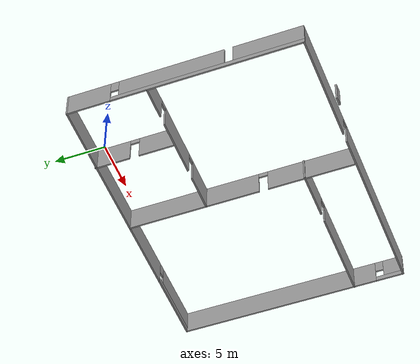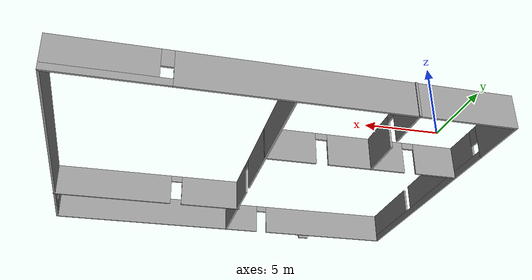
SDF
<?xml version='1.0'?>
<sdf version='1.6'>
  <model name='my_building'>
    <pose frame=''>10.1612 -9.66671 0 0 -0 0</pose>
    <link name='Door_0'>
      <collision name='Door_0_Collision'>
        <geometry>
          <box>
            <size>0.9 0.17 2</size>
          </box>
        </geometry>
        <pose frame=''>0 0 1 0 -0 0</pose>
      </collision>
      <visual name='Door_0_Visual'>
        <pose frame=''>0 0 1 0 -0 0</pose>
        <geometry>
          <box>
            <size>0.9 0.17 2</size>
          </box>
        </geometry>
        <material>
          <script>
            <uri>file://media/materials/scripts/gazebo.material</uri>
            <name>Gazebo/Grey</name>
          </script>
        </material>
      </visual>
      <pose frame=''>-7.65143 -12.2036 0 0 -0 0</pose>
    </link>
    <link name='Wall_0'>
      <pose frame=''>-0.01552 11.3893 0 0 -0 0</pose>
      <visual name='Wall_0_Visual_0'>
        <pose frame=''>-3.79155 0 1.25 0 -0 0</pose>
        <geometry>
          <box>
            <size>22.4169 0.15 2.5</size>
          </box>
        </geometry>
        <material>
          <script>
            <uri>file://media/materials/scripts/gazebo.material</uri>
            <name>Gazebo/Grey</name>
          </script>
          <ambient>1 1 1 1</ambient>
        </material>
        <meta>
          <layer>0</layer>
        </meta>
      </visual>
      <collision name='Wall_0_Collision_0'>
        <geometry>
          <box>
            <size>22.4169 0.15 2.5</size>
          </box>
        </geometry>
        <pose frame=''>-3.79155 0 1.25 0 -0 0</pose>
      </collision>
      <visual name='Wall_0_Visual_1'>
        <pose frame=''>11.2085 0 0.25 0 -0 0</pose>
        <geometry>
          <box>
            <size>7.5831 0.15 0.5</size>
          </box>
        </geometry>
        <material>
          <script>
            <uri>file://media/materials/scripts/gazebo.material</uri>
            <name>Gazebo/Grey</name>
          </script>
          <ambient>1 1 1 1</ambient>
        </material>
        <meta>
          <layer>0</layer>
        </meta>
      </visual>
      <collision name='Wall_0_Collision_1'>
        <geometry>
          <box>
            <size>7.5831 0.15 0.5</size>
          </box>
        </geometry>
        <pose frame=''>11.2085 0 0.25 0 -0 0</pose>
      </collision>
      <visual name='Wall_0_Visual_2'>
        <pose frame=''>11.6085 0 1.5 0 -0 0</pose>
        <geometry>
          <box>
            <size>6.7831 0.15 2</size>
          </box>
        </geometry>
        <material>
          <script>
            <uri>file://media/materials/scripts/gazebo.material</uri>
            <name>Gazebo/Grey</name>
          </script>
          <ambient>1 1 1 1</ambient>
        </material>
        <meta>
          <layer>0</layer>
        </meta>
      </visual>
      <collision name='Wall_0_Collision_2'>
        <geometry>
          <box>
            <size>6.7831 0.15 2</size>
          </box>
        </geometry>
        <pose frame=''>11.6085 0 1.5 0 -0 0</pose>
      </collision>
      <visual name='Wall_0_Visual_3'>
        <pose frame=''>7.8169 0 1.9 0 -0 0</pose>
        <geometry>
          <box>
            <size>0.8 0.15 1.2</size>
          </box>
        </geometry>
        <material>
          <script>
            <uri>file://media/materials/scripts/gazebo.material</uri>
            <name>Gazebo/Grey</name>
          </script>
          <ambient>1 1 1 1</ambient>
        </material>
        <meta>
          <layer>0</layer>
        </meta>
      </visual>
      <collision name='Wall_0_Collision_3'>
        <geometry>
          <box>
            <size>0.8 0.15 1.2</size>
          </box>
        </geometry>
        <pose frame=''>7.8169 0 1.9 0 -0 0</pose>
      </collision>
    </link>
    <link name='Wall_10'>
      <pose frame=''>-0.01552 -11.4607 0 0 -0 0</pose>
      <visual name='Wall_10_Visual_0'>
        <pose frame=''>-9.40746 0 1.25 0 -0 0</pose>
        <geometry>
          <box>
            <size>11.1851 0.15 2.5</size>
          </box>
        </geometry>
        <material>
          <script>
            <uri>file://media/materials/scripts/gazebo.material</uri>
            <name>Gazebo/Grey</name>
          </script>
          <ambient>1 1 1 1</ambient>
        </material>
        <meta>
          <layer>0</layer>
        </meta>
      </visual>
      <collision name='Wall_10_Collision_0'>
        <geometry>
          <box>
            <size>11.1851 0.15 2.5</size>
          </box>
        </geometry>
        <pose frame=''>-9.40746 0 1.25 0 -0 0</pose>
      </collision>
      <visual name='Wall_10_Visual_1'>
        <pose frame=''>6.04254 0 1.25 0 -0 0</pose>
        <geometry>
          <box>
            <size>17.9149 0.15 2.5</size>
          </box>
        </geometry>
        <material>
          <script>
            <uri>file://media/materials/scripts/gazebo.material</uri>
            <name>Gazebo/Grey</name>
          </script>
          <ambient>1 1 1 1</ambient>
        </material>
        <meta>
          <layer>0</layer>
        </meta>
      </visual>
      <collision name='Wall_10_Collision_1'>
        <geometry>
          <box>
            <size>17.9149 0.15 2.5</size>
          </box>
        </geometry>
        <pose frame=''>6.04254 0 1.25 0 -0 0</pose>
      </collision>
      <visual name='Wall_10_Visual_2'>
        <pose frame=''>-3.36492 0 2.25 0 -0 0</pose>
        <geometry>
          <box>
            <size>0.9 0.15 0.5</size>
          </box>
        </geometry>
        <material>
          <script>
            <uri>file://media/materials/scripts/gazebo.material</uri>
            <name>Gazebo/Grey</name>
          </script>
          <ambient>1 1 1 1</ambient>
        </material>
        <meta>
          <layer>0</layer>
        </meta>
      </visual>
      <collision name='Wall_10_Collision_2'>
        <geometry>
          <box>
            <size>0.9 0.15 0.5</size>
          </box>
        </geometry>
        <pose frame=''>-3.36492 0 2.25 0 -0 0</pose>
      </collision>
    </link>
    <link name='Wall_13'>
      <pose frame=''>-0.059249 0.045469 0 0 0 -1.5708</pose>
      <visual name='Wall_13_Visual_0'>
        <pose frame=''>-4.73771 0 1.25 0 -0 0</pose>
        <geometry>
          <box>
            <size>13.2746 0.15 2.5</size>
          </box>
        </geometry>
        <material>
          <script>
            <uri>file://media/materials/scripts/gazebo.material</uri>
            <name>Gazebo/Grey</name>
          </script>
          <ambient>1 1 1 1</ambient>
        </material>
        <meta>
          <layer>0</layer>
        </meta>
      </visual>
      <collision name='Wall_13_Collision_0'>
        <geometry>
          <box>
            <size>13.2746 0.15 2.5</size>
          </box>
        </geometry>
        <pose frame=''>-4.73771 0 1.25 0 -0 0</pose>
      </collision>
      <visual name='Wall_13_Visual_1'>
        <pose frame=''>7.08729 0 1.25 0 -0 0</pose>
        <geometry>
          <box>
            <size>8.57542 0.15 2.5</size>
          </box>
        </geometry>
        <material>
          <script>
            <uri>file://media/materials/scripts/gazebo.material</uri>
            <name>Gazebo/Grey</name>
          </script>
          <ambient>1 1 1 1</ambient>
        </material>
        <meta>
          <layer>0</layer>
        </meta>
      </visual>
      <collision name='Wall_13_Collision_1'>
        <geometry>
          <box>
            <size>8.57542 0.15 2.5</size>
          </box>
        </geometry>
        <pose frame=''>7.08729 0 1.25 0 -0 0</pose>
      </collision>
      <visual name='Wall_13_Visual_2'>
        <pose frame=''>2.34958 0 2.25 0 -0 0</pose>
        <geometry>
          <box>
            <size>0.9 0.15 0.5</size>
          </box>
        </geometry>
        <material>
          <script>
            <uri>file://media/materials/scripts/gazebo.material</uri>
            <name>Gazebo/Grey</name>
          </script>
          <ambient>1 1 1 1</ambient>
        </material>
        <meta>
          <layer>0</layer>
        </meta>
      </visual>
      <collision name='Wall_13_Collision_2'>
        <geometry>
          <box>
            <size>0.9 0.15 0.5</size>
          </box>
        </geometry>
        <pose frame=''>2.34958 0 2.25 0 -0 0</pose>
      </collision>
    </link>
    <link name='Wall_15'>
      <pose frame=''>-7.4776 3.51899 0 0 -0 0</pose>
      <visual name='Wall_15_Visual_0'>
        <pose frame=''>-5.83443 0 1.25 0 -0 0</pose>
        <geometry>
          <box>
            <size>3.33114 0.15 2.5</size>
          </box>
        </geometry>
        <material>
          <script>
            <uri>file://media/materials/scripts/gazebo.material</uri>
            <name>Gazebo/Grey</name>
          </script>
          <ambient>1 1 1 1</ambient>
        </material>
        <meta>
          <layer>0</layer>
        </meta>
      </visual>
      <collision name='Wall_15_Collision_0'>
        <geometry>
          <box>
            <size>3.33114 0.15 2.5</size>
          </box>
        </geometry>
        <pose frame=''>-5.83443 0 1.25 0 -0 0</pose>
      </collision>
      <visual name='Wall_15_Visual_1'>
        <pose frame=''>-0.276089 0 1.25 0 -0 0</pose>
        <geometry>
          <box>
            <size>5.98554 0.15 2.5</size>
          </box>
        </geometry>
        <material>
          <script>
            <uri>file://media/materials/scripts/gazebo.material</uri>
            <name>Gazebo/Grey</name>
          </script>
          <ambient>1 1 1 1</ambient>
        </material>
        <meta>
          <layer>0</layer>
        </meta>
      </visual>
      <collision name='Wall_15_Collision_1'>
        <geometry>
          <box>
            <size>5.98554 0.15 2.5</size>
          </box>
        </geometry>
        <pose frame=''>-0.276089 0 1.25 0 -0 0</pose>
      </collision>
      <visual name='Wall_15_Visual_2'>
        <pose frame=''>5.55834 0 1.25 0 -0 0</pose>
        <geometry>
          <box>
            <size>3.88332 0.15 2.5</size>
          </box>
        </geometry>
        <material>
          <script>
            <uri>file://media/materials/scripts/gazebo.material</uri>
            <name>Gazebo/Grey</name>
          </script>
          <ambient>1 1 1 1</ambient>
        </material>
        <meta>
          <layer>0</layer>
        </meta>
      </visual>
      <collision name='Wall_15_Collision_2'>
        <geometry>
          <box>
            <size>3.88332 0.15 2.5</size>
          </box>
        </geometry>
        <pose frame=''>5.55834 0 1.25 0 -0 0</pose>
      </collision>
      <visual name='Wall_15_Visual_3'>
        <pose frame=''>-3.71886 0 2.25 0 -0 0</pose>
        <geometry>
          <box>
            <size>0.9 0.15 0.5</size>
          </box>
        </geometry>
        <material>
          <script>
            <uri>file://media/materials/scripts/gazebo.material</uri>
            <name>Gazebo/Grey</name>
          </script>
          <ambient>1 1 1 1</ambient>
        </material>
        <meta>
          <layer>0</layer>
        </meta>
      </visual>
      <collision name='Wall_15_Collision_3'>
        <geometry>
          <box>
            <size>0.9 0.15 0.5</size>
          </box>
        </geometry>
        <pose frame=''>-3.71886 0 2.25 0 -0 0</pose>
      </collision>
      <visual name='Wall_15_Visual_4'>
        <pose frame=''>3.16668 0 2.25 0 -0 0</pose>
        <geometry>
          <box>
            <size>0.9 0.15 0.5</size>
          </box>
        </geometry>
        <material>
          <script>
            <uri>file://media/materials/scripts/gazebo.material</uri>
            <name>Gazebo/Grey</name>
          </script>
          <ambient>1 1 1 1</ambient>
        </material>
        <meta>
          <layer>0</layer>
        </meta>
      </visual>
      <collision name='Wall_15_Collision_4'>
        <geometry>
          <box>
            <size>0.9 0.15 0.5</size>
          </box>
        </geometry>
        <pose frame=''>3.16668 0 2.25 0 -0 0</pose>
      </collision>
    </link>
    <link name='Wall_17'>
      <pose frame=''>7.39052 -6.41007 0 0 -0 0</pose>
      <visual name='Wall_17_Visual_0'>
        <pose frame=''>-5.14278 0 1.25 0 -0 0</pose>
        <geometry>
          <box>
            <size>4.96443 0.15 2.5</size>
          </box>
        </geometry>
        <material>
          <script>
            <uri>file://media/materials/scripts/gazebo.material</uri>
            <name>Gazebo/Grey</name>
          </script>
          <ambient>1 1 1 1</ambient>
        </material>
        <meta>
          <layer>0</layer>
        </meta>
      </visual>
      <collision name='Wall_17_Collision_0'>
        <geometry>
          <box>
            <size>4.96443 0.15 2.5</size>
          </box>
        </geometry>
        <pose frame=''>-5.14278 0 1.25 0 -0 0</pose>
      </collision>
      <visual name='Wall_17_Visual_1'>
        <pose frame=''>2.93222 0 1.25 0 -0 0</pose>
        <geometry>
          <box>
            <size>9.38556 0.15 2.5</size>
          </box>
        </geometry>
        <material>
          <script>
            <uri>file://media/materials/scripts/gazebo.material</uri>
            <name>Gazebo/Grey</name>
          </script>
          <ambient>1 1 1 1</ambient>
        </material>
        <meta>
          <layer>0</layer>
        </meta>
      </visual>
      <collision name='Wall_17_Collision_1'>
        <geometry>
          <box>
            <size>9.38556 0.15 2.5</size>
          </box>
        </geometry>
        <pose frame=''>2.93222 0 1.25 0 -0 0</pose>
      </collision>
      <visual name='Wall_17_Visual_2'>
        <pose frame=''>-2.21056 0 2.25 0 -0 0</pose>
        <geometry>
          <box>
            <size>0.9 0.15 0.5</size>
          </box>
        </geometry>
        <material>
          <script>
            <uri>file://media/materials/scripts/gazebo.material</uri>
            <name>Gazebo/Grey</name>
          </script>
          <ambient>1 1 1 1</ambient>
        </material>
        <meta>
          <layer>0</layer>
        </meta>
      </visual>
      <collision name='Wall_17_Collision_2'>
        <geometry>
          <box>
            <size>0.9 0.15 0.5</size>
          </box>
        </geometry>
        <pose frame=''>-2.21056 0 2.25 0 -0 0</pose>
      </collision>
    </link>
    <link name='Wall_19'>
      <pose frame=''>-8.10988 7.53575 0 0 0 -1.5708</pose>
      <visual name='Wall_19_Visual_0'>
        <pose frame=''>-2.23661 0 1.25 0 -0 0</pose>
        <geometry>
          <box>
            <size>3.52679 0.15 2.5</size>
          </box>
        </geometry>
        <material>
          <script>
            <uri>file://media/materials/scripts/gazebo.material</uri>
            <name>Gazebo/Grey</name>
          </script>
          <ambient>1 1 1 1</ambient>
        </material>
        <meta>
          <layer>0</layer>
        </meta>
      </visual>
      <collision name='Wall_19_Collision_0'>
        <geometry>
          <box>
            <size>3.52679 0.15 2.5</size>
          </box>
        </geometry>
        <pose frame=''>-2.23661 0 1.25 0 -0 0</pose>
      </collision>
      <visual name='Wall_19_Visual_1'>
        <pose frame=''>2.21339 0 1.25 0 -0 0</pose>
        <geometry>
          <box>
            <size>3.57321 0.15 2.5</size>
          </box>
        </geometry>
        <material>
          <script>
            <uri>file://media/materials/scripts/gazebo.material</uri>
            <name>Gazebo/Grey</name>
          </script>
          <ambient>1 1 1 1</ambient>
        </material>
        <meta>
          <layer>0</layer>
        </meta>
      </visual>
      <collision name='Wall_19_Collision_1'>
        <geometry>
          <box>
            <size>3.57321 0.15 2.5</size>
          </box>
        </geometry>
        <pose frame=''>2.21339 0 1.25 0 -0 0</pose>
      </collision>
      <visual name='Wall_19_Visual_2'>
        <pose frame=''>-0.023214 0 2.25 0 -0 0</pose>
        <geometry>
          <box>
            <size>0.9 0.15 0.5</size>
          </box>
        </geometry>
        <material>
          <script>
            <uri>file://media/materials/scripts/gazebo.material</uri>
            <name>Gazebo/Grey</name>
          </script>
          <ambient>1 1 1 1</ambient>
        </material>
        <meta>
          <layer>0</layer>
        </meta>
      </visual>
      <collision name='Wall_19_Collision_2'>
        <geometry>
          <box>
            <size>0.9 0.15 0.5</size>
          </box>
        </geometry>
        <pose frame=''>-0.023214 0 2.25 0 -0 0</pose>
      </collision>
    </link>
    <link name='Wall_2'>
      <pose frame=''>14.9095 -0.035745 0 0 0 -1.5708</pose>
      <visual name='Wall_2_Visual_0'>
        <pose frame=''>-1.40426 0 1.25 0 -0 0</pose>
        <geometry>
          <box>
            <size>20.1915 0.15 2.5</size>
          </box>
        </geometry>
        <material>
          <script>
            <uri>file://media/materials/scripts/gazebo.material</uri>
            <name>Gazebo/Grey</name>
          </script>
          <ambient>1 1 1 1</ambient>
        </material>
        <meta>
          <layer>0</layer>
        </meta>
      </visual>
      <collision name='Wall_2_Collision_0'>
        <geometry>
          <box>
            <size>20.1915 0.15 2.5</size>
          </box>
        </geometry>
        <pose frame=''>-1.40426 0 1.25 0 -0 0</pose>
      </collision>
      <visual name='Wall_2_Visual_1'>
        <pose frame=''>10.0957 0 0.25 0 -0 0</pose>
        <geometry>
          <box>
            <size>2.80853 0.15 0.5</size>
          </box>
        </geometry>
        <material>
          <script>
            <uri>file://media/materials/scripts/gazebo.material</uri>
            <name>Gazebo/Grey</name>
          </script>
          <ambient>1 1 1 1</ambient>
        </material>
        <meta>
          <layer>0</layer>
        </meta>
      </visual>
      <collision name='Wall_2_Collision_1'>
        <geometry>
          <box>
            <size>2.80853 0.15 0.5</size>
          </box>
        </geometry>
        <pose frame=''>10.0957 0 0.25 0 -0 0</pose>
      </collision>
      <visual name='Wall_2_Visual_2'>
        <pose frame=''>10.4957 0 1.5 0 -0 0</pose>
        <geometry>
          <box>
            <size>2.00853 0.15 2</size>
          </box>
        </geometry>
        <material>
          <script>
            <uri>file://media/materials/scripts/gazebo.material</uri>
            <name>Gazebo/Grey</name>
          </script>
          <ambient>1 1 1 1</ambient>
        </material>
        <meta>
          <layer>0</layer>
        </meta>
      </visual>
      <collision name='Wall_2_Collision_2'>
        <geometry>
          <box>
            <size>2.00853 0.15 2</size>
          </box>
        </geometry>
        <pose frame=''>10.4957 0 1.5 0 -0 0</pose>
      </collision>
      <visual name='Wall_2_Visual_3'>
        <pose frame=''>9.09147 0 1.9 0 -0 0</pose>
        <geometry>
          <box>
            <size>0.8 0.15 1.2</size>
          </box>
        </geometry>
        <material>
          <script>
            <uri>file://media/materials/scripts/gazebo.material</uri>
            <name>Gazebo/Grey</name>
          </script>
          <ambient>1 1 1 1</ambient>
        </material>
        <meta>
          <layer>0</layer>
        </meta>
      </visual>
      <collision name='Wall_2_Collision_3'>
        <geometry>
          <box>
            <size>0.8 0.15 1.2</size>
          </box>
        </geometry>
        <pose frame=''>9.09147 0 1.9 0 -0 0</pose>
      </collision>
    </link>
    <link name='Wall_6'>
      <pose frame=''>-14.9405 -0.035745 0 0 0 -1.5708</pose>
      <visual name='Wall_6_Visual_0'>
        <pose frame=''>-9.3177 0 1.25 0 -0 0</pose>
        <geometry>
          <box>
            <size>4.36461 0.15 2.5</size>
          </box>
        </geometry>
        <material>
          <script>
            <uri>file://media/materials/scripts/gazebo.material</uri>
            <name>Gazebo/Grey</name>
          </script>
          <ambient>1 1 1 1</ambient>
        </material>
        <meta>
          <layer>0</layer>
        </meta>
      </visual>
      <collision name='Wall_6_Collision_0'>
        <geometry>
          <box>
            <size>4.36461 0.15 2.5</size>
          </box>
        </geometry>
        <pose frame=''>-9.3177 0 1.25 0 -0 0</pose>
      </collision>
      <visual name='Wall_6_Visual_1'>
        <pose frame=''>2.1823 0 0.25 0 -0 0</pose>
        <geometry>
          <box>
            <size>18.6354 0.15 0.5</size>
          </box>
        </geometry>
        <material>
          <script>
            <uri>file://media/materials/scripts/gazebo.material</uri>
            <name>Gazebo/Grey</name>
          </script>
          <ambient>1 1 1 1</ambient>
        </material>
        <meta>
          <layer>0</layer>
        </meta>
      </visual>
      <collision name='Wall_6_Collision_1'>
        <geometry>
          <box>
            <size>18.6354 0.15 0.5</size>
          </box>
        </geometry>
        <pose frame=''>2.1823 0 0.25 0 -0 0</pose>
      </collision>
      <visual name='Wall_6_Visual_2'>
        <pose frame=''>-1.19788 0 1.5 0 -0 0</pose>
        <geometry>
          <box>
            <size>10.275 0.15 2</size>
          </box>
        </geometry>
        <material>
          <script>
            <uri>file://media/materials/scripts/gazebo.material</uri>
            <name>Gazebo/Grey</name>
          </script>
          <ambient>1 1 1 1</ambient>
        </material>
        <meta>
          <layer>0</layer>
        </meta>
      </visual>
      <collision name='Wall_6_Collision_2'>
        <geometry>
          <box>
            <size>10.275 0.15 2</size>
          </box>
        </geometry>
        <pose frame=''>-1.19788 0 1.5 0 -0 0</pose>
      </collision>
      <visual name='Wall_6_Visual_3'>
        <pose frame=''>8.11981 0 1.5 0 -0 0</pose>
        <geometry>
          <box>
            <size>6.76038 0.15 2</size>
          </box>
        </geometry>
        <material>
          <script>
            <uri>file://media/materials/scripts/gazebo.material</uri>
            <name>Gazebo/Grey</name>
          </script>
          <ambient>1 1 1 1</ambient>
        </material>
        <meta>
          <layer>0</layer>
        </meta>
      </visual>
      <collision name='Wall_6_Collision_3'>
        <geometry>
          <box>
            <size>6.76038 0.15 2</size>
          </box>
        </geometry>
        <pose frame=''>8.11981 0 1.5 0 -0 0</pose>
      </collision>
      <visual name='Wall_6_Visual_4'>
        <pose frame=''>-6.73539 0 1.9 0 -0 0</pose>
        <geometry>
          <box>
            <size>0.8 0.15 1.2</size>
          </box>
        </geometry>
        <material>
          <script>
            <uri>file://media/materials/scripts/gazebo.material</uri>
            <name>Gazebo/Grey</name>
          </script>
          <ambient>1 1 1 1</ambient>
        </material>
        <meta>
          <layer>0</layer>
        </meta>
      </visual>
      <collision name='Wall_6_Collision_4'>
        <geometry>
          <box>
            <size>0.8 0.15 1.2</size>
          </box>
        </geometry>
        <pose frame=''>-6.73539 0 1.9 0 -0 0</pose>
      </collision>
      <visual name='Wall_6_Visual_5'>
        <pose frame=''>3.93962 0 1.9 0 -0 0</pose>
        <geometry>
          <box>
            <size>0 0.15 1.2</size>
          </box>
        </geometry>
        <material>
          <script>
            <uri>file://media/materials/scripts/gazebo.material</uri>
            <name>Gazebo/Grey</name>
          </script>
          <ambient>1 1 1 1</ambient>
        </material>
        <meta>
          <layer>0</layer>
        </meta>
      </visual>
      <collision name='Wall_6_Collision_5'>
        <geometry>
          <box>
            <size>0 0.15 1.2</size>
          </box>
        </geometry>
        <pose frame=''>3.93962 0 1.9 0 -0 0</pose>
      </collision>
    </link>
    <static>1</static>
  </model>
</sdf>
